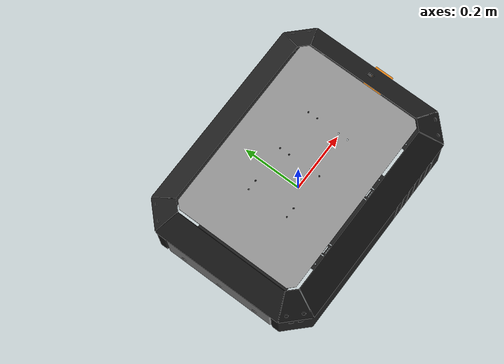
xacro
<?xml version="1.0"?>
<robot xmlns:xacro="http://www.ros.org/wiki/xacro">

    <link name="base_footprint">
        <origin xyz="0.0 0.0 0.0" rpy="0.0 0.0 0.0"/>
    </link>

    <link name="base_link">
        <visual>
            <origin xyz="0 0 0" rpy="0 0 0" />
            <geometry>
                <mesh filename="package://robot_description/meshes/base_link.STL" />
            </geometry>
            <material name="Black_wheels"/>
        </visual>
        <collision>
            <origin xyz="0 0 0" rpy="0 0 0" />
            <geometry>
                <box size="0.0 0.0 0.0"/>
            </geometry>
        </collision>
        <inertial>
            <mass value="6.1834389040098" />
            <origin xyz="0 0 0" />
            <inertia ixx="0.172811693426198" ixy="0.172811693426198" ixz="0.000146852915258599"
                     iyy="0.329853029043022" iyz="-0.0000005106111186954"
                     izz="0.502514023614247" />
        </inertial>
    </link>

    <link name="front_side_link">
        <visual>
            <origin xyz="0 0 0" rpy="1.5708 0 -1.5708" />
            <geometry>
                <mesh filename="package://robot_description/meshes/FRONTFACE.STL"/>
            </geometry>
            <material name="Grey_body"/>
        </visual>
        <collision>
            <origin xyz="0 0 0" rpy="1.5708 0 -1.5708" />
            <geometry>
                <box size="0.0 0.0 0.0"/>
            </geometry>
        </collision>
        <inertial>
            <mass value="0.943263635545501" />
            <origin xyz="0 0 0" />
            <inertia ixx="0.00291641918840626" ixy="0.0000190996145270648" ixz="0.00000071419602127283"
                     iyy="0.0140654484607705" iyz="0.000034925471644662"
                     izz="0.0169244457647262" />
        </inertial>
    </link>

    <link name="back_side_link">
        <visual>
            <origin xyz="0 0 0" rpy="-1.5708 0 1.5708" />
            <geometry>
                <mesh filename="package://robot_description/meshes/BACKFACE.STL"/>
            </geometry>
            <material name="Grey_body"/>
        </visual>
        <collision>
            <origin xyz="0 0 0" rpy="0 0 0" />
            <geometry>
                <box size="0.0 0.0 0.0"/>
            </geometry>
        </collision>
        <inertial>
            <mass value="1.21964784215122" />
            <origin xyz="0 0 0" />
            <inertia ixx="0.00351494178324154" ixy="-0.000000012069310846" ixz="0.00000002879626633959"
                     iyy="0.0164769667498377" iyz="-0.00000087575048906592"
                     izz="0.352922362443128" />
        </inertial>
    </link>

    <link name="right_side_link">
        <visual>
            <origin xyz="0 0 0" rpy="1.5708 0 0" />
            <geometry>
                <mesh filename="package://robot_description/meshes/RIGHTSIDE.STL"/>
            </geometry>
            <material name="Black_wheels"/>
        </visual>
        <collision>
            <origin xyz="0 0 0" rpy="0 0 0" />
            <geometry>
                <box size="0.0 0.0 0.0"/>
            </geometry>
        </collision>
        <inertial>
            <mass value="2.59245784828295" />
            <origin xyz="0 0 0" />
            <inertia ixx="0.0097385527877872" ixy="0.0000705335602570311" ixz="0.000535987354813434"
                     iyy="0.16832306413205" iyz="0.0000107962961975476"
                     izz="0.173820773325926" />
        </inertial>
    </link>

    <link name="left_side_link">
        <visual>
            <origin xyz="0 0 0" rpy="1.5708 0 3.1416" />
            <geometry>
                <mesh filename="package://robot_description/meshes/LEFTSIDE.STL"/>
            </geometry>
            <material name="Black_wheels"/>
        </visual>
        <collision>
            <origin xyz="0 0 0" rpy="0 0 0" />
            <geometry>
                <box size="0.0 0.0 0.0"/>
            </geometry>
        </collision>
        <inertial>
            <mass value="2.59245784828295" />
            <origin xyz="0 0 0" />
            <inertia ixx="0.0097385527877872" ixy="0.0000705335602570311" ixz="0.000535987354813434"
                     iyy="0.16832306413205" iyz="0.0000107962961975476"
                     izz="0.173820773325926" />
        </inertial>
    </link>

    <link name="flange_link">
        <visual>
            <origin xyz="0 0 0" rpy="1.5708 0 0" />
            <geometry>
                <mesh filename="package://robot_description/meshes/FLANGE.STL"/>
            </geometry>
            <material name="Black_wheels"/>
        </visual>
        <collision>
            <origin xyz="0 0 0" rpy="0 0 0" />
            <geometry>
                <box size="0.0 0.0 0.0"/>
            </geometry>
        </collision>
        <inertial>
            <mass value="4.55743149884064" />
            <origin xyz="0 0 0" />
            <inertia ixx="0.224259288011278" ixy="0.0000146668870126123" ixz="-0.00000045139077650599"
                     iyy="0.572824908778646" iyz="-6.30334977764897E-016"
                     izz="0.352922362443128" />
        </inertial>
    </link>

    <link name="top_lift_link">
        <visual>
            <origin xyz="0 0 0" rpy="1.5707963267949 0 3.14159265358979" />
            <geometry>
                <mesh filename="package://robot_description/meshes/TOPBASE.STL"/>
            </geometry>
            <material name="Grey_body"/>
        </visual>
        <collision>
            <origin xyz="0 0 0" rpy="0 0 0" />
            <geometry>

            </geometry>
        </collision>
        <inertial>
            <mass value="4.55743149884064" />
            <origin xyz="0 0 0" />
            <inertia ixx="0.172811693426198" ixy="0.000287772429697471" ixz="0.000146852915258599"
                     iyy="0.329853029043022" iyz="-0.0000005106111186954"
                     izz="0.502514023614247" />
        </inertial>
    </link>

    <link name="lidarbase_link">
        <visual>
            <origin xyz="0 0 0" rpy="0 0 0" />
            <geometry>
                <mesh filename="package://robot_description/meshes/liDAR_SPACER.STL"/>
            </geometry>
            <material name="Orange_body"/>
        </visual>
        <collision>
            <origin xyz="0 0 0" rpy="0 0 0" />
            <geometry>
                <box size="0.0 0.0 0.0"/>
            </geometry>
        </collision>
        <inertial>
            <mass value="0.044971" />
            <origin xyz="0 0 0" />
            <inertia ixx="0.000019021" ixy="-1.0558E-020" ixz="-0.0000096066"
                     iyy="0.000053096" iyz="-6.5811E-021"
                     izz="0.000065593" />
        </inertial>
    </link>

    <joint name="base_base_joint" type="fixed">
        <parent link="base_footprint"/>
        <child link="base_link"/>
        <origin xyz="0.0 0.0 0.015855" rpy="0.0 0.0 0.0"/>
    </joint>

    <joint name="base_front_joint" type="fixed">
        <parent link="base_link"/>
        <child link="front_side_link"/>
        <origin xyz="0.388 0.0 0.0" rpy="0.0 0.0 0.0"/>
    </joint>

    <joint name="base_back_joint" type="fixed">
        <parent link="base_link"/>
        <child link="back_side_link"/>
        <origin xyz="-0.388 0.0 0.0" rpy="0.0 0.0 0.0"/>
    </joint>

    <joint name="base_right_joint" type="fixed">
        <parent link="base_link"/>
        <child link="right_side_link"/>
        <origin xyz=" 0.0 -0.2902 0.161" rpy="0.0 0.0 0.0"/>
    </joint>

    <joint name="base_left_joint" type="fixed">
        <parent link="base_link"/>
        <child link="left_side_link"/>
        <origin xyz=" 0.0 0.2902 0.161" rpy="0.0 0.0 0.0"/>
    </joint>

    <joint name="base_flange_joint" type="fixed">
        <parent link="base_link"/>
        <child link="flange_link"/>
        <origin xyz="-0.00073426 -0.00062835 0.163" rpy="0.0 0.0 0.0"/>
    </joint>

    <joint name="base_top_joint" type="fixed">
        <parent link="base_link"/>
        <child link="top_lift_link"/>
        <origin xyz="0.0 0.0 0.2374" rpy="0.0 0.0 0.0"/>
    </joint>

    <joint name="base_lidarbase_joint" type="fixed">
        <parent link="base_link"/>
        <child link="lidarbase_link"/>
        <origin xyz="0.44615 0.0325 0.026" rpy="0.0 0.0 0.0"/>
    </joint>

</robot>
